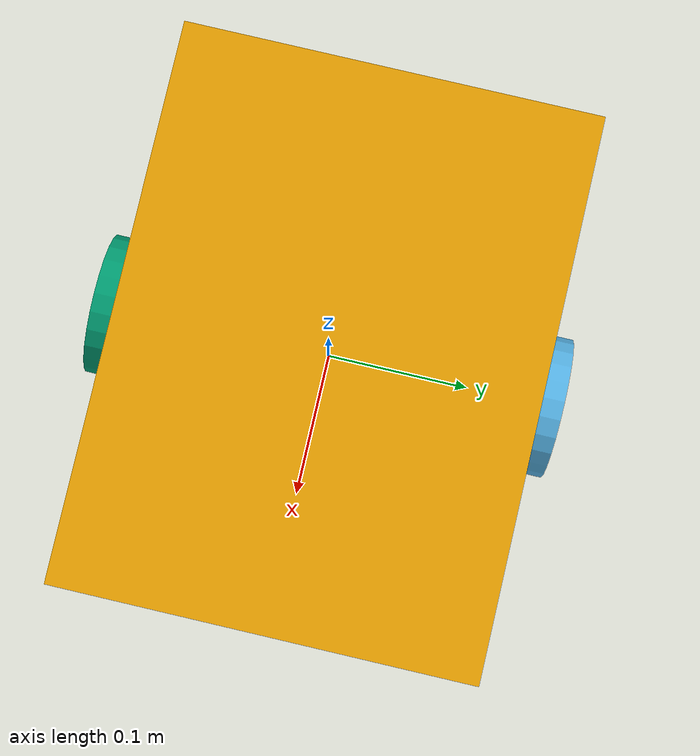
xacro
<?xml version="1.0"?>

<robot xmlns:xacro="http://www.ros.org/wiki/xacro"
       name="simple_robot">

  <xacro:property name="chassis_length" value="0.4"/>
  <xacro:property name="chassis_width" value="0.3"/>
  <xacro:property name="chassis_height" value="0.1"/>

  <xacro:property name="wheel_radius" value="0.05"/>
  <xacro:property name="wheel_width" value="0.03"/>

  <!-- Chassis -->

  <link name="base_link">

    <visual>
      <geometry>
        <box size="${chassis_length}
                   ${chassis_width}
                   ${chassis_height}"/>
      </geometry>
    </visual>

  </link>

  <!-- Left Wheel -->

  <link name="left_wheel">

    <visual>
      <geometry>
        <cylinder radius="${wheel_radius}"
                  length="${wheel_width}"/>
      </geometry>
    </visual>

  </link>

  <!-- Right Wheel -->

  <link name="right_wheel">

    <visual>
      <geometry>
        <cylinder radius="${wheel_radius}"
                  length="${wheel_width}"/>
      </geometry>
    </visual>

  </link>

  <!-- Joints -->

  <joint name="left_wheel_joint"
         type="continuous">

      <parent link="base_link"/>
      <child link="left_wheel"/>

      <origin xyz="0 0.15 0"
              rpy="1.5708 0 0"/>

      <axis xyz="0 0 1"/>

  </joint>

  <joint name="right_wheel_joint"
         type="continuous">

      <parent link="base_link"/>
      <child link="right_wheel"/>

      <origin xyz="0 -0.15 0"
              rpy="1.5708 0 0"/>

      <axis xyz="0 0 1"/>

  </joint>

</robot>
